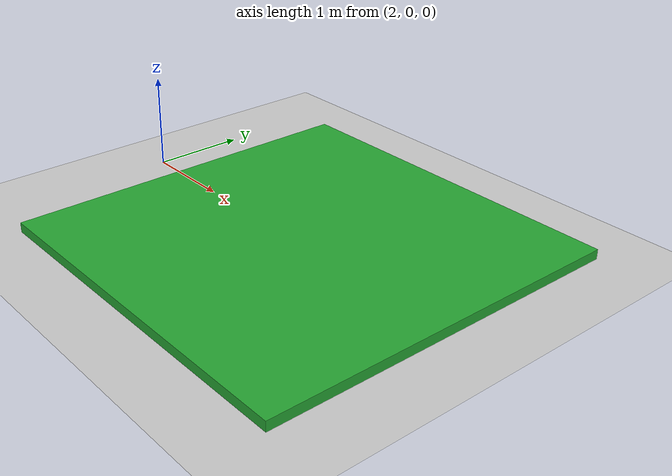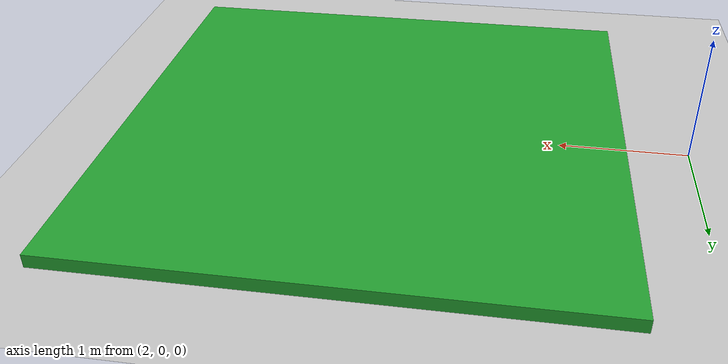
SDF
<?xml version="1.0" ?>

<sdf version="1.5">
    <world name="default">
        <!-- Target real time factor is the product of max_step_size and real_time_update_rate -->
        <!-- Negative real_time_update_rate means that Gazebo will run as fast as possible -->
        <physics type="ode">
            <type>world</type>
            <max_step_size>0.001</max_step_size>
            <real_time_update_rate>1000</real_time_update_rate>
            <iters>500</iters>
        </physics>
        <!-- A global light source -->
        <include>
            <uri>model://sun</uri>
        </include>
        <!-- A ground plane -->
        <include>
            <uri>model://ground_plane</uri>
        </include>
        <model name="pole">
                <static>true</static>
                <link name="platform">
                      <collision name="collision">
                        <geometry>
                          <box>
                            <size>4 4 0.2</size>
                          </box>
                        </geometry>
                        <pose>0 0 0 0 0 0</pose>
                      </collision>
                      <visual name="visual">
                        <geometry>
                          <box>
                            <size>4 4 0.2</size>
                          </box>
                        </geometry>
                        <material>
                          <script>
                            <uri>file://media/materials/scripts/gazebo.material</uri>
                            <name>Gazebo/Green</name>
                          </script>
                        </material>
                        <pose>0 0 0 0 0 0</pose>
                      </visual>
                      <pose>4.5 0 0 0 0 0</pose>
                    </link>
            </model>

    </world>
</sdf>
